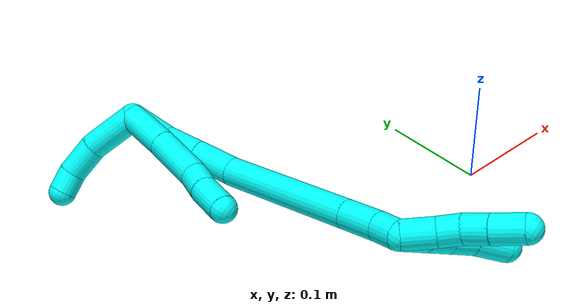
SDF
<sdf version="1.7">
 <world name="default">
  <model name="3">
   <static>0</static>
   <link name="3">
    <collision name="collision-cylinder-e_1_2_8">
     <pose>0.00064 -0.009829 -0.020893 2.70188 0.027721 0.1239</pose>
     <geometry><cylinder><radius>0.0125</radius><length>0.046196</length></cylinder></geometry>
     <surface>
      <friction><ode><mu>1.16</mu><mu2>1.16</mu2><slip1>0</slip1><slip2>0</slip2></ode></friction>
      <contact><ode><kp>1e+06</kp><kd>1</kd><max_vel>0</max_vel><min_depth>0.001</min_depth></ode></contact>
     </surface>
    </collision>
    <visual name="visual-cylinder-e_1_2_8">
     <pose>0.00064 -0.009829 -0.020893 2.70188 0.027721 0.1239</pose>
     <geometry><cylinder><radius>0.0125</radius><length>0.046196</length></cylinder></geometry>
     <material><ambient>0.003922 1 0.996078 1</ambient></material>
    </visual>
    <collision name="collision-cylinder-e_2_8_9">
     <pose>0.00114 -0.030579 -0.063971 2.68411 -0.005698 -0.024475</pose>
     <geometry><cylinder><radius>0.0125</radius><length>0.049458</length></cylinder></geometry>
     <surface>
      <friction><ode><mu>1.16</mu><mu2>1.16</mu2><slip1>0</slip1><slip2>0</slip2></ode></friction>
      <contact><ode><kp>1e+06</kp><kd>1</kd><max_vel>0</max_vel><min_depth>0.001</min_depth></ode></contact>
     </surface>
    </collision>
    <visual name="visual-cylinder-e_2_8_9">
     <pose>0.00114 -0.030579 -0.063971 2.68411 -0.005698 -0.024475</pose>
     <geometry><cylinder><radius>0.0125</radius><length>0.049458</length></cylinder></geometry>
     <material><ambient>0.003922 1 0.996078 1</ambient></material>
    </visual>
    <collision name="collision-cylinder-e_3_9_10">
     <pose>0.000342 -0.048779 -0.09492 2.44855 -0.057543 -0.159065</pose>
     <geometry><cylinder><radius>0.0125</radius><length>0.02282</length></cylinder></geometry>
     <surface>
      <friction><ode><mu>1.16</mu><mu2>1.16</mu2><slip1>0</slip1><slip2>0</slip2></ode></friction>
      <contact><ode><kp>1e+06</kp><kd>1</kd><max_vel>0</max_vel><min_depth>0.001</min_depth></ode></contact>
     </surface>
    </collision>
    <visual name="visual-cylinder-e_3_9_10">
     <pose>0.000342 -0.048779 -0.09492 2.44855 -0.057543 -0.159065</pose>
     <geometry><cylinder><radius>0.0125</radius><length>0.02282</length></cylinder></geometry>
     <material><ambient>0.003922 1 0.996078 1</ambient></material>
    </visual>
    <collision name="collision-cylinder-e_4_10_6">
     <pose>0.000406 -0.065054 -0.116607 2.53346 0.045693 0.145382</pose>
     <geometry><cylinder><radius>0.0125</radius><length>0.031526</length></cylinder></geometry>
     <surface>
      <friction><ode><mu>1.16</mu><mu2>1.16</mu2><slip1>0</slip1><slip2>0</slip2></ode></friction>
      <contact><ode><kp>1e+06</kp><kd>1</kd><max_vel>0</max_vel><min_depth>0.001</min_depth></ode></contact>
     </surface>
    </collision>
    <visual name="visual-cylinder-e_4_10_6">
     <pose>0.000406 -0.065054 -0.116607 2.53346 0.045693 0.145382</pose>
     <geometry><cylinder><radius>0.0125</radius><length>0.031526</length></cylinder></geometry>
     <material><ambient>0.003922 1 0.996078 1</ambient></material>
    </visual>
    <collision name="collision-cylinder-e_1_2_11">
     <pose>-0.022336 0.000581 0.009115 -0.063705 -1.18264 0.042784</pose>
     <geometry><cylinder><radius>0.0125</radius><length>0.048263</length></cylinder></geometry>
     <surface>
      <friction><ode><mu>1.16</mu><mu2>1.16</mu2><slip1>0</slip1><slip2>0</slip2></ode></friction>
      <contact><ode><kp>1e+06</kp><kd>1</kd><max_vel>0</max_vel><min_depth>0.001</min_depth></ode></contact>
     </surface>
    </collision>
    <visual name="visual-cylinder-e_1_2_11">
     <pose>-0.022336 0.000581 0.009115 -0.063705 -1.18264 0.042784</pose>
     <geometry><cylinder><radius>0.0125</radius><length>0.048263</length></cylinder></geometry>
     <material><ambient>0.003922 1 0.996078 1</ambient></material>
    </visual>
    <collision name="collision-cylinder-e_2_11_12">
     <pose>-0.060214 -0.000188 0.02019 0.603455 -1.41875 -0.522152</pose>
     <geometry><cylinder><radius>0.0125</radius><length>0.031445</length></cylinder></geometry>
     <surface>
      <friction><ode><mu>1.16</mu><mu2>1.16</mu2><slip1>0</slip1><slip2>0</slip2></ode></friction>
      <contact><ode><kp>1e+06</kp><kd>1</kd><max_vel>0</max_vel><min_depth>0.001</min_depth></ode></contact>
     </surface>
    </collision>
    <visual name="visual-cylinder-e_2_11_12">
     <pose>-0.060214 -0.000188 0.02019 0.603455 -1.41875 -0.522152</pose>
     <geometry><cylinder><radius>0.0125</radius><length>0.031445</length></cylinder></geometry>
     <material><ambient>0.003922 1 0.996078 1</ambient></material>
    </visual>
    <collision name="collision-cylinder-e_3_12_5">
     <pose>-0.085386 -0.004353 0.020644 2.06258 -1.2508 -1.75701</pose>
     <geometry><cylinder><radius>0.0125</radius><length>0.020292</length></cylinder></geometry>
     <surface>
      <friction><ode><mu>1.16</mu><mu2>1.16</mu2><slip1>0</slip1><slip2>0</slip2></ode></friction>
      <contact><ode><kp>1e+06</kp><kd>1</kd><max_vel>0</max_vel><min_depth>0.001</min_depth></ode></contact>
     </surface>
    </collision>
    <visual name="visual-cylinder-e_3_12_5">
     <pose>-0.085386 -0.004353 0.020644 2.06258 -1.2508 -1.75701</pose>
     <geometry><cylinder><radius>0.0125</radius><length>0.020292</length></cylinder></geometry>
     <material><ambient>0.003922 1 0.996078 1</ambient></material>
    </visual>
    <collision name="collision-cylinder-e_1_2_13">
     <pose>0.001254 -0.002501 -0.019679 3.0152 0.063115 0.92545</pose>
     <geometry><cylinder><radius>0.0125</radius><length>0.039753</length></cylinder></geometry>
     <surface>
      <friction><ode><mu>1.16</mu><mu2>1.16</mu2><slip1>0</slip1><slip2>0</slip2></ode></friction>
      <contact><ode><kp>1e+06</kp><kd>1</kd><max_vel>0</max_vel><min_depth>0.001</min_depth></ode></contact>
     </surface>
    </collision>
    <visual name="visual-cylinder-e_1_2_13">
     <pose>0.001254 -0.002501 -0.019679 3.0152 0.063115 0.92545</pose>
     <geometry><cylinder><radius>0.0125</radius><length>0.039753</length></cylinder></geometry>
     <material><ambient>0.003922 1 0.996078 1</ambient></material>
    </visual>
    <collision name="collision-cylinder-e_2_13_14">
     <pose>0.006467 -0.009837 -0.056319 2.86386 0.220817 1.34113</pose>
     <geometry><cylinder><radius>0.0125</radius><length>0.036153</length></cylinder></geometry>
     <surface>
      <friction><ode><mu>1.16</mu><mu2>1.16</mu2><slip1>0</slip1><slip2>0</slip2></ode></friction>
      <contact><ode><kp>1e+06</kp><kd>1</kd><max_vel>0</max_vel><min_depth>0.001</min_depth></ode></contact>
     </surface>
    </collision>
    <visual name="visual-cylinder-e_2_13_14">
     <pose>0.006467 -0.009837 -0.056319 2.86386 0.220817 1.34113</pose>
     <geometry><cylinder><radius>0.0125</radius><length>0.036153</length></cylinder></geometry>
     <material><ambient>0.003922 1 0.996078 1</ambient></material>
    </visual>
    <collision name="collision-cylinder-e_3_14_15">
     <pose>0.014677 -0.020535 -0.091624 2.83228 0.217285 1.22094</pose>
     <geometry><cylinder><radius>0.0125</radius><length>0.039441</length></cylinder></geometry>
     <surface>
      <friction><ode><mu>1.16</mu><mu2>1.16</mu2><slip1>0</slip1><slip2>0</slip2></ode></friction>
      <contact><ode><kp>1e+06</kp><kd>1</kd><max_vel>0</max_vel><min_depth>0.001</min_depth></ode></contact>
     </surface>
    </collision>
    <visual name="visual-cylinder-e_3_14_15">
     <pose>0.014677 -0.020535 -0.091624 2.83228 0.217285 1.22094</pose>
     <geometry><cylinder><radius>0.0125</radius><length>0.039441</length></cylinder></geometry>
     <material><ambient>0.003922 1 0.996078 1</ambient></material>
    </visual>
    <collision name="collision-cylinder-e_4_15_16">
     <pose>0.039323 -0.055256 -0.16449 2.65479 0.319279 1.15047</pose>
     <geometry><cylinder><radius>0.0125</radius><length>0.129947</length></cylinder></geometry>
     <surface>
      <friction><ode><mu>1.16</mu><mu2>1.16</mu2><slip1>0</slip1><slip2>0</slip2></ode></friction>
      <contact><ode><kp>1e+06</kp><kd>1</kd><max_vel>0</max_vel><min_depth>0.001</min_depth></ode></contact>
     </surface>
    </collision>
    <visual name="visual-cylinder-e_4_15_16">
     <pose>0.039323 -0.055256 -0.16449 2.65479 0.319279 1.15047</pose>
     <geometry><cylinder><radius>0.0125</radius><length>0.129947</length></cylinder></geometry>
     <material><ambient>0.003922 1 0.996078 1</ambient></material>
    </visual>
    <collision name="collision-cylinder-e_5_16_17">
     <pose>0.064897 -0.091456 -0.232866 2.65425 0.319119 1.14896</pose>
     <geometry><cylinder><radius>0.0125</radius><length>0.033021</length></cylinder></geometry>
     <surface>
      <friction><ode><mu>1.16</mu><mu2>1.16</mu2><slip1>0</slip1><slip2>0</slip2></ode></friction>
      <contact><ode><kp>1e+06</kp><kd>1</kd><max_vel>0</max_vel><min_depth>0.001</min_depth></ode></contact>
     </surface>
    </collision>
    <visual name="visual-cylinder-e_5_16_17">
     <pose>0.064897 -0.091456 -0.232866 2.65425 0.319119 1.14896</pose>
     <geometry><cylinder><radius>0.0125</radius><length>0.033021</length></cylinder></geometry>
     <material><ambient>0.003922 1 0.996078 1</ambient></material>
    </visual>
    <collision name="collision-cylinder-e_6_17_1">
     <pose>0.073041 -0.10467 -0.255336 2.54342 0.276958 0.849046</pose>
     <geometry><cylinder><radius>0.0125</radius><length>0.021685</length></cylinder></geometry>
     <surface>
      <friction><ode><mu>1.16</mu><mu2>1.16</mu2><slip1>0</slip1><slip2>0</slip2></ode></friction>
      <contact><ode><kp>1e+06</kp><kd>1</kd><max_vel>0</max_vel><min_depth>0.001</min_depth></ode></contact>
     </surface>
    </collision>
    <visual name="visual-cylinder-e_6_17_1">
     <pose>0.073041 -0.10467 -0.255336 2.54342 0.276958 0.849046</pose>
     <geometry><cylinder><radius>0.0125</radius><length>0.021685</length></cylinder></geometry>
     <material><ambient>0.003922 1 0.996078 1</ambient></material>
    </visual>
    <collision name="collision-cylinder-e_1_1_18">
     <pose>0.079832 -0.102586 -0.272783 -2.40809 0.311429 -0.775924</pose>
     <geometry><cylinder><radius>0.0125</radius><length>0.024973</length></cylinder></geometry>
     <surface>
      <friction><ode><mu>1.16</mu><mu2>1.16</mu2><slip1>0</slip1><slip2>0</slip2></ode></friction>
      <contact><ode><kp>1e+06</kp><kd>1</kd><max_vel>0</max_vel><min_depth>0.001</min_depth></ode></contact>
     </surface>
    </collision>
    <visual name="visual-cylinder-e_1_1_18">
     <pose>0.079832 -0.102586 -0.272783 -2.40809 0.311429 -0.775924</pose>
     <geometry><cylinder><radius>0.0125</radius><length>0.024973</length></cylinder></geometry>
     <material><ambient>0.003922 1 0.996078 1</ambient></material>
    </visual>
    <collision name="collision-cylinder-e_2_18_19">
     <pose>0.086633 -0.085689 -0.289358 -2.28478 0.246411 -0.529571</pose>
     <geometry><cylinder><radius>0.0125</radius><length>0.024393</length></cylinder></geometry>
     <surface>
      <friction><ode><mu>1.16</mu><mu2>1.16</mu2><slip1>0</slip1><slip2>0</slip2></ode></friction>
      <contact><ode><kp>1e+06</kp><kd>1</kd><max_vel>0</max_vel><min_depth>0.001</min_depth></ode></contact>
     </surface>
    </collision>
    <visual name="visual-cylinder-e_2_18_19">
     <pose>0.086633 -0.085689 -0.289358 -2.28478 0.246411 -0.529571</pose>
     <geometry><cylinder><radius>0.0125</radius><length>0.024393</length></cylinder></geometry>
     <material><ambient>0.003922 1 0.996078 1</ambient></material>
    </visual>
    <collision name="collision-cylinder-e_3_19_20">
     <pose>0.093528 -0.071529 -0.305216 -2.56975 0.385949 -1.17328</pose>
     <geometry><cylinder><radius>0.0125</radius><length>0.020825</length></cylinder></geometry>
     <surface>
      <friction><ode><mu>1.16</mu><mu2>1.16</mu2><slip1>0</slip1><slip2>0</slip2></ode></friction>
      <contact><ode><kp>1e+06</kp><kd>1</kd><max_vel>0</max_vel><min_depth>0.001</min_depth></ode></contact>
     </surface>
    </collision>
    <visual name="visual-cylinder-e_3_19_20">
     <pose>0.093528 -0.071529 -0.305216 -2.56975 0.385949 -1.17328</pose>
     <geometry><cylinder><radius>0.0125</radius><length>0.020825</length></cylinder></geometry>
     <material><ambient>0.003922 1 0.996078 1</ambient></material>
    </visual>
    <collision name="collision-cylinder-e_4_20_4">
     <pose>0.100791 -0.05828 -0.325431 -2.5559 0.22624 -0.720657</pose>
     <geometry><cylinder><radius>0.0125</radius><length>0.029808</length></cylinder></geometry>
     <surface>
      <friction><ode><mu>1.16</mu><mu2>1.16</mu2><slip1>0</slip1><slip2>0</slip2></ode></friction>
      <contact><ode><kp>1e+06</kp><kd>1</kd><max_vel>0</max_vel><min_depth>0.001</min_depth></ode></contact>
     </surface>
    </collision>
    <visual name="visual-cylinder-e_4_20_4">
     <pose>0.100791 -0.05828 -0.325431 -2.5559 0.22624 -0.720657</pose>
     <geometry><cylinder><radius>0.0125</radius><length>0.029808</length></cylinder></geometry>
     <material><ambient>0.003922 1 0.996078 1</ambient></material>
    </visual>
    <collision name="collision-cylinder-e_1_1_21">
     <pose>0.084662 -0.106569 -0.27525 -2.80331 0.625925 -2.17042</pose>
     <geometry><cylinder><radius>0.0125</radius><length>0.029552</length></cylinder></geometry>
     <surface>
      <friction><ode><mu>1.16</mu><mu2>1.16</mu2><slip1>0</slip1><slip2>0</slip2></ode></friction>
      <contact><ode><kp>1e+06</kp><kd>1</kd><max_vel>0</max_vel><min_depth>0.001</min_depth></ode></contact>
     </surface>
    </collision>
    <visual name="visual-cylinder-e_1_1_21">
     <pose>0.084662 -0.106569 -0.27525 -2.80331 0.625925 -2.17042</pose>
     <geometry><cylinder><radius>0.0125</radius><length>0.029552</length></cylinder></geometry>
     <material><ambient>0.003922 1 0.996078 1</ambient></material>
    </visual>
    <collision name="collision-cylinder-e_2_21_22">
     <pose>0.100273 -0.10307 -0.294154 3.07927 0.739626 2.98112</pose>
     <geometry><cylinder><radius>0.0125</radius><length>0.020636</length></cylinder></geometry>
     <surface>
      <friction><ode><mu>1.16</mu><mu2>1.16</mu2><slip1>0</slip1><slip2>0</slip2></ode></friction>
      <contact><ode><kp>1e+06</kp><kd>1</kd><max_vel>0</max_vel><min_depth>0.001</min_depth></ode></contact>
     </surface>
    </collision>
    <visual name="visual-cylinder-e_2_21_22">
     <pose>0.100273 -0.10307 -0.294154 3.07927 0.739626 2.98112</pose>
     <geometry><cylinder><radius>0.0125</radius><length>0.020636</length></cylinder></geometry>
     <material><ambient>0.003922 1 0.996078 1</ambient></material>
    </visual>
    <collision name="collision-cylinder-e_3_22_23">
     <pose>0.113461 -0.105363 -0.310376 2.93352 0.616016 2.50735</pose>
     <geometry><cylinder><radius>0.0125</radius><length>0.021576</length></cylinder></geometry>
     <surface>
      <friction><ode><mu>1.16</mu><mu2>1.16</mu2><slip1>0</slip1><slip2>0</slip2></ode></friction>
      <contact><ode><kp>1e+06</kp><kd>1</kd><max_vel>0</max_vel><min_depth>0.001</min_depth></ode></contact>
     </surface>
    </collision>
    <visual name="visual-cylinder-e_3_22_23">
     <pose>0.113461 -0.105363 -0.310376 2.93352 0.616016 2.50735</pose>
     <geometry><cylinder><radius>0.0125</radius><length>0.021576</length></cylinder></geometry>
     <material><ambient>0.003922 1 0.996078 1</ambient></material>
    </visual>
    <collision name="collision-cylinder-e_4_23_3">
     <pose>0.128124 -0.108893 -0.330186 2.9899 0.639902 2.69069</pose>
     <geometry><cylinder><radius>0.0125</radius><length>0.028236</length></cylinder></geometry>
     <surface>
      <friction><ode><mu>1.16</mu><mu2>1.16</mu2><slip1>0</slip1><slip2>0</slip2></ode></friction>
      <contact><ode><kp>1e+06</kp><kd>1</kd><max_vel>0</max_vel><min_depth>0.001</min_depth></ode></contact>
     </surface>
    </collision>
    <visual name="visual-cylinder-e_4_23_3">
     <pose>0.128124 -0.108893 -0.330186 2.9899 0.639902 2.69069</pose>
     <geometry><cylinder><radius>0.0125</radius><length>0.028236</length></cylinder></geometry>
     <material><ambient>0.003922 1 0.996078 1</ambient></material>
    </visual>
    <collision name="collision-sphere-3">
     <pose>0.136554 -0.110605 -0.341381 0 -0 0</pose>
     <geometry><sphere><radius>0.0125</radius></sphere></geometry>
     <surface>
      <friction><ode><mu>1.16</mu><mu2>1.16</mu2><slip1>0</slip1><slip2>0</slip2></ode></friction>
      <contact><ode><kp>1e+06</kp><kd>1</kd><max_vel>0</max_vel><min_depth>0.001</min_depth></ode></contact>
     </surface>
    </collision>
    <visual name="visual-sphere-3">
     <pose>0.136554 -0.110605 -0.341381 0 -0 0</pose>
     <geometry><sphere><radius>0.0125</radius></sphere></geometry>
     <material><ambient>0.003922 1 0.996078 1</ambient></material>
    </visual>
    <collision name="collision-sphere-23">
     <pose>0.119694 -0.107182 -0.318991 0 -0 0</pose>
     <geometry><sphere><radius>0.0125</radius></sphere></geometry>
     <surface>
      <friction><ode><mu>1.16</mu><mu2>1.16</mu2><slip1>0</slip1><slip2>0</slip2></ode></friction>
      <contact><ode><kp>1e+06</kp><kd>1</kd><max_vel>0</max_vel><min_depth>0.001</min_depth></ode></contact>
     </surface>
    </collision>
    <visual name="visual-sphere-23">
     <pose>0.119694 -0.107182 -0.318991 0 -0 0</pose>
     <geometry><sphere><radius>0.0125</radius></sphere></geometry>
     <material><ambient>0.003922 1 0.996078 1</ambient></material>
    </visual>
    <collision name="collision-sphere-22">
     <pose>0.107227 -0.103544 -0.301761 0 -0 0</pose>
     <geometry><sphere><radius>0.0125</radius></sphere></geometry>
     <surface>
      <friction><ode><mu>1.16</mu><mu2>1.16</mu2><slip1>0</slip1><slip2>0</slip2></ode></friction>
      <contact><ode><kp>1e+06</kp><kd>1</kd><max_vel>0</max_vel><min_depth>0.001</min_depth></ode></contact>
     </surface>
    </collision>
    <visual name="visual-sphere-22">
     <pose>0.107227 -0.103544 -0.301761 0 -0 0</pose>
     <geometry><sphere><radius>0.0125</radius></sphere></geometry>
     <material><ambient>0.003922 1 0.996078 1</ambient></material>
    </visual>
    <collision name="collision-sphere-21">
     <pose>0.093319 -0.102595 -0.286546 0 -0 0</pose>
     <geometry><sphere><radius>0.0125</radius></sphere></geometry>
     <surface>
      <friction><ode><mu>1.16</mu><mu2>1.16</mu2><slip1>0</slip1><slip2>0</slip2></ode></friction>
      <contact><ode><kp>1e+06</kp><kd>1</kd><max_vel>0</max_vel><min_depth>0.001</min_depth></ode></contact>
     </surface>
    </collision>
    <visual name="visual-sphere-21">
     <pose>0.093319 -0.102595 -0.286546 0 -0 0</pose>
     <geometry><sphere><radius>0.0125</radius></sphere></geometry>
     <material><ambient>0.003922 1 0.996078 1</ambient></material>
    </visual>
    <collision name="collision-sphere-4">
     <pose>0.104134 -0.050251 -0.337535 0 -0 0</pose>
     <geometry><sphere><radius>0.0125</radius></sphere></geometry>
     <surface>
      <friction><ode><mu>1.16</mu><mu2>1.16</mu2><slip1>0</slip1><slip2>0</slip2></ode></friction>
      <contact><ode><kp>1e+06</kp><kd>1</kd><max_vel>0</max_vel><min_depth>0.001</min_depth></ode></contact>
     </surface>
    </collision>
    <visual name="visual-sphere-4">
     <pose>0.104134 -0.050251 -0.337535 0 -0 0</pose>
     <geometry><sphere><radius>0.0125</radius></sphere></geometry>
     <material><ambient>0.003922 1 0.996078 1</ambient></material>
    </visual>
    <collision name="collision-sphere-20">
     <pose>0.097447 -0.066308 -0.313328 0 -0 0</pose>
     <geometry><sphere><radius>0.0125</radius></sphere></geometry>
     <surface>
      <friction><ode><mu>1.16</mu><mu2>1.16</mu2><slip1>0</slip1><slip2>0</slip2></ode></friction>
      <contact><ode><kp>1e+06</kp><kd>1</kd><max_vel>0</max_vel><min_depth>0.001</min_depth></ode></contact>
     </surface>
    </collision>
    <visual name="visual-sphere-20">
     <pose>0.097447 -0.066308 -0.313328 0 -0 0</pose>
     <geometry><sphere><radius>0.0125</radius></sphere></geometry>
     <material><ambient>0.003922 1 0.996078 1</ambient></material>
    </visual>
    <collision name="collision-sphere-11">
     <pose>-0.044672 0.001163 0.01823 0 -0 0</pose>
     <geometry><sphere><radius>0.0125</radius></sphere></geometry>
     <surface>
      <friction><ode><mu>1.16</mu><mu2>1.16</mu2><slip1>0</slip1><slip2>0</slip2></ode></friction>
      <contact><ode><kp>1e+06</kp><kd>1</kd><max_vel>0</max_vel><min_depth>0.001</min_depth></ode></contact>
     </surface>
    </collision>
    <visual name="visual-sphere-11">
     <pose>-0.044672 0.001163 0.01823 0 -0 0</pose>
     <geometry><sphere><radius>0.0125</radius></sphere></geometry>
     <material><ambient>0.003922 1 0.996078 1</ambient></material>
    </visual>
    <collision name="collision-sphere-6">
     <pose>0.001126 -0.07405 -0.12953 0 -0 0</pose>
     <geometry><sphere><radius>0.0125</radius></sphere></geometry>
     <surface>
      <friction><ode><mu>1.16</mu><mu2>1.16</mu2><slip1>0</slip1><slip2>0</slip2></ode></friction>
      <contact><ode><kp>1e+06</kp><kd>1</kd><max_vel>0</max_vel><min_depth>0.001</min_depth></ode></contact>
     </surface>
    </collision>
    <visual name="visual-sphere-6">
     <pose>0.001126 -0.07405 -0.12953 0 -0 0</pose>
     <geometry><sphere><radius>0.0125</radius></sphere></geometry>
     <material><ambient>0.003922 1 0.996078 1</ambient></material>
    </visual>
    <collision name="collision-sphere-10">
     <pose>-0.000314 -0.056057 -0.103684 0 -0 0</pose>
     <geometry><sphere><radius>0.0125</radius></sphere></geometry>
     <surface>
      <friction><ode><mu>1.16</mu><mu2>1.16</mu2><slip1>0</slip1><slip2>0</slip2></ode></friction>
      <contact><ode><kp>1e+06</kp><kd>1</kd><max_vel>0</max_vel><min_depth>0.001</min_depth></ode></contact>
     </surface>
    </collision>
    <visual name="visual-sphere-10">
     <pose>-0.000314 -0.056057 -0.103684 0 -0 0</pose>
     <geometry><sphere><radius>0.0125</radius></sphere></geometry>
     <material><ambient>0.003922 1 0.996078 1</ambient></material>
    </visual>
    <collision name="collision-sphere-9">
     <pose>0.000999 -0.041502 -0.086157 0 -0 0</pose>
     <geometry><sphere><radius>0.0125</radius></sphere></geometry>
     <surface>
      <friction><ode><mu>1.16</mu><mu2>1.16</mu2><slip1>0</slip1><slip2>0</slip2></ode></friction>
      <contact><ode><kp>1e+06</kp><kd>1</kd><max_vel>0</max_vel><min_depth>0.001</min_depth></ode></contact>
     </surface>
    </collision>
    <visual name="visual-sphere-9">
     <pose>0.000999 -0.041502 -0.086157 0 -0 0</pose>
     <geometry><sphere><radius>0.0125</radius></sphere></geometry>
     <material><ambient>0.003922 1 0.996078 1</ambient></material>
    </visual>
    <collision name="collision-sphere-2">
     <geometry><sphere><radius>0.0125</radius></sphere></geometry>
     <surface>
      <friction><ode><mu>1.16</mu><mu2>1.16</mu2><slip1>0</slip1><slip2>0</slip2></ode></friction>
      <contact><ode><kp>1e+06</kp><kd>1</kd><max_vel>0</max_vel><min_depth>0.001</min_depth></ode></contact>
     </surface>
    </collision>
    <visual name="visual-sphere-2">
     <geometry><sphere><radius>0.0125</radius></sphere></geometry>
     <material><ambient>0.003922 1 0.996078 1</ambient></material>
    </visual>
    <collision name="collision-sphere-19">
     <pose>0.089608 -0.07675 -0.297104 0 -0 0</pose>
     <geometry><sphere><radius>0.0125</radius></sphere></geometry>
     <surface>
      <friction><ode><mu>1.16</mu><mu2>1.16</mu2><slip1>0</slip1><slip2>0</slip2></ode></friction>
      <contact><ode><kp>1e+06</kp><kd>1</kd><max_vel>0</max_vel><min_depth>0.001</min_depth></ode></contact>
     </surface>
    </collision>
    <visual name="visual-sphere-19">
     <pose>0.089608 -0.07675 -0.297104 0 -0 0</pose>
     <geometry><sphere><radius>0.0125</radius></sphere></geometry>
     <material><ambient>0.003922 1 0.996078 1</ambient></material>
    </visual>
    <collision name="collision-sphere-8">
     <pose>0.00128 -0.019657 -0.041786 0 -0 0</pose>
     <geometry><sphere><radius>0.0125</radius></sphere></geometry>
     <surface>
      <friction><ode><mu>1.16</mu><mu2>1.16</mu2><slip1>0</slip1><slip2>0</slip2></ode></friction>
      <contact><ode><kp>1e+06</kp><kd>1</kd><max_vel>0</max_vel><min_depth>0.001</min_depth></ode></contact>
     </surface>
    </collision>
    <visual name="visual-sphere-8">
     <pose>0.00128 -0.019657 -0.041786 0 -0 0</pose>
     <geometry><sphere><radius>0.0125</radius></sphere></geometry>
     <material><ambient>0.003922 1 0.996078 1</ambient></material>
    </visual>
    <collision name="collision-sphere-12">
     <pose>-0.075755 -0.00154 0.022151 0 -0 0</pose>
     <geometry><sphere><radius>0.0125</radius></sphere></geometry>
     <surface>
      <friction><ode><mu>1.16</mu><mu2>1.16</mu2><slip1>0</slip1><slip2>0</slip2></ode></friction>
      <contact><ode><kp>1e+06</kp><kd>1</kd><max_vel>0</max_vel><min_depth>0.001</min_depth></ode></contact>
     </surface>
    </collision>
    <visual name="visual-sphere-12">
     <pose>-0.075755 -0.00154 0.022151 0 -0 0</pose>
     <geometry><sphere><radius>0.0125</radius></sphere></geometry>
     <material><ambient>0.003922 1 0.996078 1</ambient></material>
    </visual>
    <collision name="collision-sphere-5">
     <pose>-0.095017 -0.007167 0.019137 0 -0 0</pose>
     <geometry><sphere><radius>0.0125</radius></sphere></geometry>
     <surface>
      <friction><ode><mu>1.16</mu><mu2>1.16</mu2><slip1>0</slip1><slip2>0</slip2></ode></friction>
      <contact><ode><kp>1e+06</kp><kd>1</kd><max_vel>0</max_vel><min_depth>0.001</min_depth></ode></contact>
     </surface>
    </collision>
    <visual name="visual-sphere-5">
     <pose>-0.095017 -0.007167 0.019137 0 -0 0</pose>
     <geometry><sphere><radius>0.0125</radius></sphere></geometry>
     <material><ambient>0.003922 1 0.996078 1</ambient></material>
    </visual>
    <collision name="collision-sphere-13">
     <pose>0.002507 -0.005001 -0.039358 0 -0 0</pose>
     <geometry><sphere><radius>0.0125</radius></sphere></geometry>
     <surface>
      <friction><ode><mu>1.16</mu><mu2>1.16</mu2><slip1>0</slip1><slip2>0</slip2></ode></friction>
      <contact><ode><kp>1e+06</kp><kd>1</kd><max_vel>0</max_vel><min_depth>0.001</min_depth></ode></contact>
     </surface>
    </collision>
    <visual name="visual-sphere-13">
     <pose>0.002507 -0.005001 -0.039358 0 -0 0</pose>
     <geometry><sphere><radius>0.0125</radius></sphere></geometry>
     <material><ambient>0.003922 1 0.996078 1</ambient></material>
    </visual>
    <collision name="collision-sphere-14">
     <pose>0.010426 -0.014673 -0.073281 0 -0 0</pose>
     <geometry><sphere><radius>0.0125</radius></sphere></geometry>
     <surface>
      <friction><ode><mu>1.16</mu><mu2>1.16</mu2><slip1>0</slip1><slip2>0</slip2></ode></friction>
      <contact><ode><kp>1e+06</kp><kd>1</kd><max_vel>0</max_vel><min_depth>0.001</min_depth></ode></contact>
     </surface>
    </collision>
    <visual name="visual-sphere-14">
     <pose>0.010426 -0.014673 -0.073281 0 -0 0</pose>
     <geometry><sphere><radius>0.0125</radius></sphere></geometry>
     <material><ambient>0.003922 1 0.996078 1</ambient></material>
    </visual>
    <collision name="collision-sphere-15">
     <pose>0.018929 -0.026397 -0.109967 0 -0 0</pose>
     <geometry><sphere><radius>0.0125</radius></sphere></geometry>
     <surface>
      <friction><ode><mu>1.16</mu><mu2>1.16</mu2><slip1>0</slip1><slip2>0</slip2></ode></friction>
      <contact><ode><kp>1e+06</kp><kd>1</kd><max_vel>0</max_vel><min_depth>0.001</min_depth></ode></contact>
     </surface>
    </collision>
    <visual name="visual-sphere-15">
     <pose>0.018929 -0.026397 -0.109967 0 -0 0</pose>
     <geometry><sphere><radius>0.0125</radius></sphere></geometry>
     <material><ambient>0.003922 1 0.996078 1</ambient></material>
    </visual>
    <collision name="collision-sphere-16">
     <pose>0.059717 -0.084115 -0.219014 0 -0 0</pose>
     <geometry><sphere><radius>0.0125</radius></sphere></geometry>
     <surface>
      <friction><ode><mu>1.16</mu><mu2>1.16</mu2><slip1>0</slip1><slip2>0</slip2></ode></friction>
      <contact><ode><kp>1e+06</kp><kd>1</kd><max_vel>0</max_vel><min_depth>0.001</min_depth></ode></contact>
     </surface>
    </collision>
    <visual name="visual-sphere-16">
     <pose>0.059717 -0.084115 -0.219014 0 -0 0</pose>
     <geometry><sphere><radius>0.0125</radius></sphere></geometry>
     <material><ambient>0.003922 1 0.996078 1</ambient></material>
    </visual>
    <collision name="collision-sphere-17">
     <pose>0.070076 -0.098797 -0.246717 0 -0 0</pose>
     <geometry><sphere><radius>0.0125</radius></sphere></geometry>
     <surface>
      <friction><ode><mu>1.16</mu><mu2>1.16</mu2><slip1>0</slip1><slip2>0</slip2></ode></friction>
      <contact><ode><kp>1e+06</kp><kd>1</kd><max_vel>0</max_vel><min_depth>0.001</min_depth></ode></contact>
     </surface>
    </collision>
    <visual name="visual-sphere-17">
     <pose>0.070076 -0.098797 -0.246717 0 -0 0</pose>
     <geometry><sphere><radius>0.0125</radius></sphere></geometry>
     <material><ambient>0.003922 1 0.996078 1</ambient></material>
    </visual>
    <collision name="collision-sphere-1">
     <pose>0.076006 -0.110543 -0.263954 0 -0 0</pose>
     <geometry><sphere><radius>0.0125</radius></sphere></geometry>
     <surface>
      <friction><ode><mu>1.16</mu><mu2>1.16</mu2><slip1>0</slip1><slip2>0</slip2></ode></friction>
      <contact><ode><kp>1e+06</kp><kd>1</kd><max_vel>0</max_vel><min_depth>0.001</min_depth></ode></contact>
     </surface>
    </collision>
    <visual name="visual-sphere-1">
     <pose>0.076006 -0.110543 -0.263954 0 -0 0</pose>
     <geometry><sphere><radius>0.0125</radius></sphere></geometry>
     <material><ambient>0.003922 1 0.996078 1</ambient></material>
    </visual>
    <collision name="collision-sphere-18">
     <pose>0.083658 -0.094628 -0.281612 0 -0 0</pose>
     <geometry><sphere><radius>0.0125</radius></sphere></geometry>
     <surface>
      <friction><ode><mu>1.16</mu><mu2>1.16</mu2><slip1>0</slip1><slip2>0</slip2></ode></friction>
      <contact><ode><kp>1e+06</kp><kd>1</kd><max_vel>0</max_vel><min_depth>0.001</min_depth></ode></contact>
     </surface>
    </collision>
    <visual name="visual-sphere-18">
     <pose>0.083658 -0.094628 -0.281612 0 -0 0</pose>
     <geometry><sphere><radius>0.0125</radius></sphere></geometry>
     <material><ambient>0.003922 1 0.996078 1</ambient></material>
    </visual>
    <inertial>
     <pose>0.033063 -0.049913 -0.146217 0 -0 0</pose>
     <mass>0.75</mass>
     <inertia><ixx>0.0003</ixx><ixy>0</ixy><ixz>0</ixz><iyy>0.000114</iyy><iyz>0</iyz><izz>0</izz></inertia>
    </inertial>
   </link>
   <pose>-0.239113 0.201813 0.077127 -0.968942 -0.902094 -0.183114</pose>
  </model>
 </world>
</sdf>
